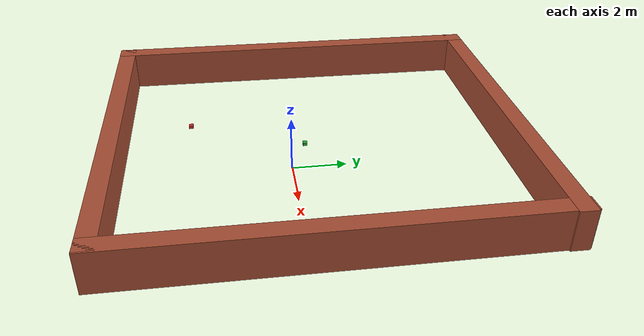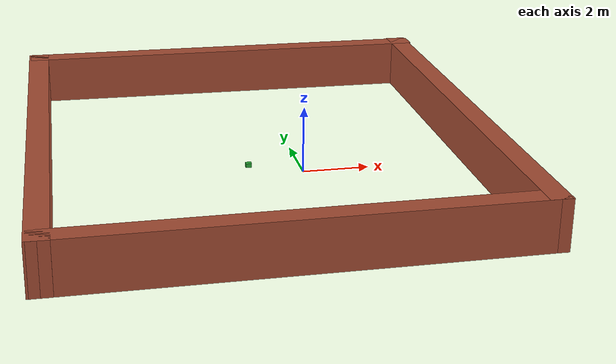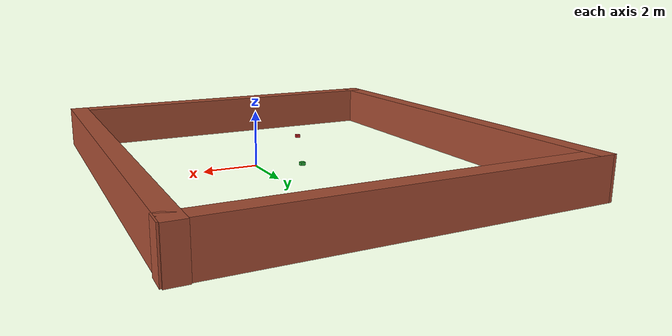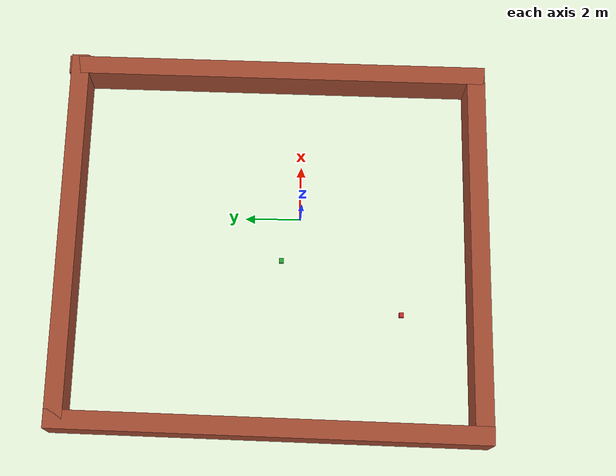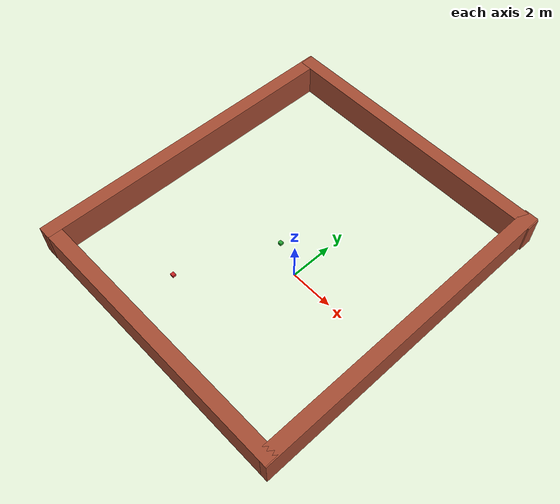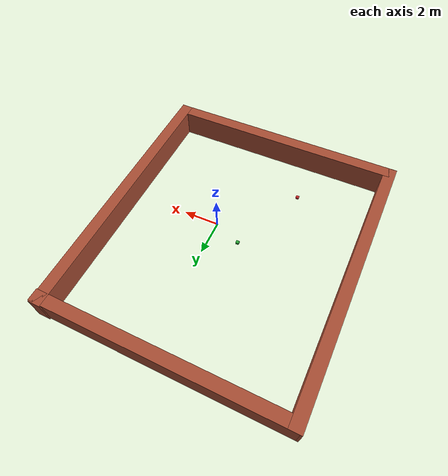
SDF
<sdf version="1.7">
 <world name="default">
  <model name="unit_box_1_clone_clone_clone">
   <link name="link">
    <inertial>
     <mass>1</mass>
     <inertia>
      <ixx>0.166667</ixx>
      <ixy>0</ixy>
      <ixz>0</ixz>
      <iyy>0.166667</iyy>
      <iyz>0</iyz>
      <izz>0.166667</izz>
     </inertia>
    </inertial>
    <visual name="visual">
     <geometry><box><size>0.177426 0.164052 0.124949</size></box></geometry>
     <material>
      <script><name>Gazebo/Red</name><uri>file://media/materials/scripts/gazebo.material</uri></script>
      <shader type="pixel"><normal_map>__default__</normal_map></shader>
      <ambient>1 0 0 1</ambient>
      <diffuse>1 0 0 1</diffuse>
      <specular>0.1 0.1 0.1 1</specular>
      <emissive>0 0 0 1</emissive>
     </material>
    </visual>
    <collision name="collision">
     <geometry><box><size>0.177426 0.164052 0.124949</size></box></geometry>
     <surface>
      <friction>
       <ode><mu>1</mu><mu2>1</mu2><fdir1>0 0 0</fdir1><slip1>0</slip1><slip2>0</slip2></ode>
       <torsional>
        <coefficient>1</coefficient>
        <patch_radius>0</patch_radius>
        <surface_radius>0</surface_radius>
        <use_patch_radius>1</use_patch_radius>
        <ode><slip>0</slip></ode>
       </torsional>
      </friction>
      <bounce><restitution_coefficient>0</restitution_coefficient><threshold>1e+06</threshold></bounce>
      <contact>
       <collide_without_contact>0</collide_without_contact>
       <collide_without_contact_bitmask>1</collide_without_contact_bitmask>
       <collide_bitmask>1</collide_bitmask>
       <ode>
        <soft_cfm>0</soft_cfm>
        <soft_erp>0.2</soft_erp>
        <kp>1e+13</kp>
        <kd>1</kd>
        <max_vel>0.01</max_vel>
        <min_depth>0</min_depth>
       </ode>
       <bullet>
        <split_impulse>1</split_impulse>
        <split_impulse_penetration_threshold>-0.01</split_impulse_penetration_threshold>
        <soft_cfm>0</soft_cfm>
        <soft_erp>0.2</soft_erp>
        <kp>1e+13</kp>
        <kd>1</kd>
       </bullet>
      </contact>
     </surface>
    </collision>
   </link>
   <static>0</static>
   <pose>-3.46751 -3.66471 0.062472 1e-06 -3e-06 -3e-06</pose>
  </model>
  <model name="green_box_clone_clone_1">
   <link name="link">
    <inertial>
     <mass>1</mass>
     <inertia>
      <ixx>0.166667</ixx>
      <ixy>0</ixy>
      <ixz>0</ixz>
      <iyy>0.166667</iyy>
      <iyz>0</iyz>
      <izz>0.166667</izz>
     </inertia>
    </inertial>
    <visual name="visual">
     <geometry><box><size>0.177426 0.164052 0.124949</size></box></geometry>
     <material>
      <script><name>Gazebo/Green</name><uri>file://media/materials/scripts/gazebo.material</uri></script>
      <shader type="pixel"><normal_map>__default__</normal_map></shader>
      <ambient>0 1 0 0</ambient>
      <diffuse>0 1 0 0</diffuse>
      <specular>0 0.1 0 0</specular>
      <emissive>0 0 0 1</emissive>
     </material>
    </visual>
    <collision name="collision">
     <geometry><box><size>0.177426 0.164052 0.124949</size></box></geometry>
     <surface>
      <friction>
       <ode><mu>1</mu><mu2>1</mu2><fdir1>0 0 0</fdir1><slip1>0</slip1><slip2>0</slip2></ode>
       <torsional>
        <coefficient>1</coefficient>
        <patch_radius>0</patch_radius>
        <surface_radius>0</surface_radius>
        <use_patch_radius>1</use_patch_radius>
        <ode><slip>0</slip></ode>
       </torsional>
      </friction>
      <bounce><restitution_coefficient>0</restitution_coefficient><threshold>1e+06</threshold></bounce>
      <contact>
       <collide_without_contact>0</collide_without_contact>
       <collide_without_contact_bitmask>1</collide_without_contact_bitmask>
       <collide_bitmask>1</collide_bitmask>
       <ode>
        <soft_cfm>0</soft_cfm>
        <soft_erp>0.2</soft_erp>
        <kp>1e+13</kp>
        <kd>1</kd>
        <max_vel>0.01</max_vel>
        <min_depth>0</min_depth>
       </ode>
       <bullet>
        <split_impulse>1</split_impulse>
        <split_impulse_penetration_threshold>-0.01</split_impulse_penetration_threshold>
        <soft_cfm>0</soft_cfm>
        <soft_erp>0.2</soft_erp>
        <kp>1e+13</kp>
        <kd>1</kd>
       </bullet>
      </contact>
     </surface>
    </collision>
   </link>
   <static>0</static>
   <pose>-1.54651 0.662143 0.062475 2e-06 3e-06 -4e-06</pose>
  </model>
  <model name="scenario_1">
   <pose>-1.22827 0.999731 0 0 -0 0</pose>
   <link name="Wall_10">
    <collision name="Wall_10_Collision">
     <geometry><box><size>15.341 0.65 1.5</size></box></geometry>
     <pose>0 0 0.75 0 -0 0</pose>
    </collision>
    <visual name="Wall_10_Visual">
     <pose>0 0 0.75 0 -0 0</pose>
     <geometry><box><size>15.341 0.65 1.5</size></box></geometry>
     <material>
      <script><uri>file://media/materials/scripts/gazebo.material</uri><name>Gazebo/Bricks</name></script>
      <ambient>1 1 1 1</ambient>
     </material>
     <meta><layer>0</layer></meta>
    </visual>
    <pose>-6.48994 0 0 0 -0 1.55259</pose>
   </link>
   <link name="Wall_5">
    <collision name="Wall_5_Collision">
     <geometry><box><size>13.5789 0.65 1.5</size></box></geometry>
     <pose>0 0 0.75 0 -0 0</pose>
    </collision>
    <visual name="Wall_5_Visual">
     <pose>0 0 0.75 0 -0 0</pose>
     <geometry><box><size>13.5789 0.65 1.5</size></box></geometry>
     <material>
      <script><uri>file://media/materials/scripts/gazebo.material</uri><name>Gazebo/Bricks</name></script>
      <ambient>1 1 1 1</ambient>
     </material>
     <meta><layer>0</layer></meta>
    </visual>
    <pose>0.161081 7.24977 0 0 -0 -0.014618</pose>
   </link>
   <link name="Wall_6">
    <collision name="Wall_6_Collision">
     <geometry><box><size>15.1424 0.65 1.5</size></box></geometry>
     <pose>0 0 0.75 0 -0 0</pose>
    </collision>
    <visual name="Wall_6_Visual">
     <pose>0 0 0.75 0 -0 0</pose>
     <geometry><box><size>15.1424 0.65 1.5</size></box></geometry>
     <material>
      <script><uri>file://media/materials/scripts/gazebo.material</uri><name>Gazebo/Bricks</name></script>
      <ambient>1 1 1 1</ambient>
     </material>
     <meta><layer>0</layer></meta>
    </visual>
    <pose>6.49106 -0.036982 0 0 -0 -1.58188</pose>
   </link>
   <link name="Wall_9">
    <collision name="Wall_9_Collision">
     <geometry><box><size>13.5776 0.65 1.5</size></box></geometry>
     <pose>0 0 0.75 0 -0 0</pose>
    </collision>
    <visual name="Wall_9_Visual">
     <pose>0 0 0.75 0 -0 0</pose>
     <geometry><box><size>13.5776 0.65 1.5</size></box></geometry>
     <material>
      <script><uri>file://media/materials/scripts/gazebo.material</uri><name>Gazebo/Bricks</name></script>
      <ambient>1 1 1 1</ambient>
     </material>
     <meta><layer>0</layer></meta>
    </visual>
    <pose>-0.106459 -7.31351 0 0 -0 -3.13683</pose>
   </link>
   <static>1</static>
  </model>
 </world>
</sdf>
